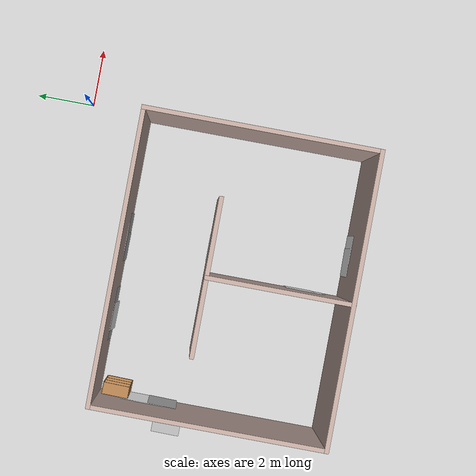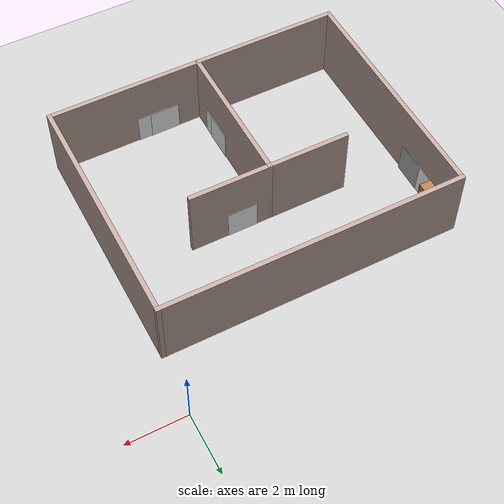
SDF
<sdf version="1.6">
 <world name="default">
  <model name="ground_plane">
   <static>1</static>
   <link name="link">
    <collision name="collision">
     <geometry><plane><normal>0 0 1</normal><size>100 100</size></plane></geometry>
     <surface><friction><ode><mu>100</mu><mu2>50</mu2></ode></friction></surface>
    </collision>
    <visual name="visual">
     <cast_shadows>0</cast_shadows>
     <geometry><plane><normal>0 0 1</normal><size>100 100</size></plane></geometry>
     <material>
      <script><uri>file://media/materials/scripts/gazebo.material</uri><name>Gazebo/Grey</name></script>
     </material>
    </visual>
   </link>
  </model>
  <model name="empty_room_colored_walls">
   <pose>-5.06103 -5.97507 0 0 -0 0</pose>
   <link name="Wall_62">
    <collision name="Wall_62_Collision">
     <geometry><box><size>10 0.15 2.5</size></box></geometry>
     <pose>0 0 1.25 0 -0 0</pose>
    </collision>
    <visual name="Wall_62_Visual">
     <pose>0 0 1.25 0 -0 0</pose>
     <geometry><box><size>10 0.15 2.5</size></box></geometry>
     <material>
      <script><uri>file://media/materials/scripts/gazebo.material</uri><name>Gazebo/Grey</name></script>
      <ambient>0.760784 0.662745 0.627451 1</ambient>
     </material>
    </visual>
    <pose>0 -3.92179 0 0 -0 0</pose>
   </link>
   <link name="Wall_63">
    <collision name="Wall_63_Collision">
     <geometry><box><size>8 0.15 2.5</size></box></geometry>
     <pose>0 0 1.25 0 -0 0</pose>
    </collision>
    <visual name="Wall_63_Visual">
     <pose>0 0 1.25 0 -0 0</pose>
     <geometry><box><size>8 0.15 2.5</size></box></geometry>
     <material>
      <script><uri>file://media/materials/scripts/gazebo.material</uri><name>Gazebo/Grey</name></script>
      <ambient>0.760784 0.662745 0.627451 1</ambient>
     </material>
    </visual>
    <pose>4.925 0.003206 0 0 -0 1.5708</pose>
   </link>
   <link name="Wall_64">
    <collision name="Wall_64_Collision">
     <geometry><box><size>10 0.15 2.5</size></box></geometry>
     <pose>0 0 1.25 0 -0 0</pose>
    </collision>
    <visual name="Wall_64_Visual">
     <pose>0 0 1.25 0 -0 0</pose>
     <geometry><box><size>10 0.15 2.5</size></box></geometry>
     <material>
      <script><uri>file://media/materials/scripts/gazebo.material</uri><name>Gazebo/Grey</name></script>
      <ambient>0.760784 0.662745 0.627451 1</ambient>
     </material>
    </visual>
    <pose>0 3.92821 0 0 -0 3.14159</pose>
   </link>
   <link name="Wall_65">
    <collision name="Wall_65_Collision">
     <geometry><box><size>8 0.15 2.5</size></box></geometry>
     <pose>0 0 1.25 0 -0 0</pose>
    </collision>
    <visual name="Wall_65_Visual">
     <pose>0 0 1.25 0 -0 0</pose>
     <geometry><box><size>8 0.15 2.5</size></box></geometry>
     <material>
      <script><uri>file://media/materials/scripts/gazebo.material</uri><name>Gazebo/Grey</name></script>
      <ambient>0.760784 0.662745 0.627451 1</ambient>
     </material>
    </visual>
    <pose>-4.925 0.003206 0 0 0 -1.5708</pose>
   </link>
   <link name="Wall_70">
    <collision name="Wall_70_Collision">
     <geometry><box><size>5 0.15 2.5</size></box></geometry>
     <pose>0 0 1.25 0 -0 0</pose>
    </collision>
    <visual name="Wall_70_Visual">
     <pose>0 0 1.25 0 -0 0</pose>
     <geometry><box><size>5 0.15 2.5</size></box></geometry>
     <material>
      <script><uri>file://media/materials/scripts/gazebo.material</uri><name>Gazebo/Grey</name></script>
      <ambient>0.760784 0.662745 0.627451 1</ambient>
     </material>
    </visual>
    <pose>-0.121943 -1.50321 0 0 -0 1.5708</pose>
   </link>
   <link name="Wall_71">
    <collision name="Wall_71_Collision">
     <geometry><box><size>2.75 0.15 2.5</size></box></geometry>
     <pose>0 0 1.25 0 -0 0</pose>
    </collision>
    <visual name="Wall_71_Visual">
     <pose>0 0 1.25 0 -0 0</pose>
     <geometry><box><size>2.75 0.15 2.5</size></box></geometry>
     <material>
      <script><uri>file://media/materials/scripts/gazebo.material</uri><name>Gazebo/Grey</name></script>
      <ambient>0.760784 0.662745 0.627451 1</ambient>
     </material>
    </visual>
    <pose>1.17806 0.921794 0 0 -0 0</pose>
   </link>
   <link name="Wall_73">
    <collision name="Wall_73_Collision">
     <geometry><box><size>2.75 0.15 2.5</size></box></geometry>
     <pose>0 0 1.25 0 -0 0</pose>
    </collision>
    <visual name="Wall_73_Visual">
     <pose>0 0 1.25 0 -0 0</pose>
     <geometry><box><size>2.75 0.15 2.5</size></box></geometry>
     <material>
      <script><uri>file://media/materials/scripts/gazebo.material</uri><name>Gazebo/Grey</name></script>
      <ambient>0.760784 0.662745 0.627451 1</ambient>
     </material>
    </visual>
    <pose>-1.42194 0.921794 0 0 -0 3.14159</pose>
   </link>
   <static>1</static>
  </model>
  <model name="bookshelf">
   <static>1</static>
   <link name="link">
    <inertial><mass>1</mass></inertial>
    <collision name="back">
     <pose>0 0.005 0.6 0 -0 0</pose>
     <geometry><box><size>0.9 0.01 1.2</size></box></geometry>
    </collision>
    <visual name="visual1">
     <pose>0 0.005 0.6 0 -0 0</pose>
     <geometry><box><size>0.9 0.01 1.2</size></box></geometry>
     <material>
      <script><uri>file://media/materials/scripts/gazebo.material</uri><name>Gazebo/Wood</name></script>
     </material>
    </visual>
    <collision name="left_side">
     <pose>0.45 -0.195 0.6 0 -0 0</pose>
     <geometry><box><size>0.02 0.4 1.2</size></box></geometry>
    </collision>
    <visual name="visual2">
     <pose>0.45 -0.195 0.6 0 -0 0</pose>
     <geometry><box><size>0.02 0.4 1.2</size></box></geometry>
     <material>
      <script><uri>file://media/materials/scripts/gazebo.material</uri><name>Gazebo/Wood</name></script>
     </material>
    </visual>
    <collision name="right_side">
     <pose>-0.45 -0.195 0.6 0 -0 0</pose>
     <geometry><box><size>0.02 0.4 1.2</size></box></geometry>
    </collision>
    <visual name="visual3">
     <pose>-0.45 -0.195 0.6 0 -0 0</pose>
     <geometry><box><size>0.02 0.4 1.2</size></box></geometry>
     <material>
      <script><uri>file://media/materials/scripts/gazebo.material</uri><name>Gazebo/Wood</name></script>
     </material>
    </visual>
    <collision name="bottom">
     <pose>0 -0.195 0.03 0 -0 0</pose>
     <geometry><box><size>0.88 0.4 0.06</size></box></geometry>
    </collision>
    <visual name="visual4">
     <pose>0 -0.195 0.03 0 -0 0</pose>
     <geometry><box><size>0.88 0.4 0.06</size></box></geometry>
     <material>
      <script><uri>file://media/materials/scripts/gazebo.material</uri><name>Gazebo/Wood</name></script>
     </material>
    </visual>
    <collision name="top">
     <pose>0 -0.195 1.19 0 -0 0</pose>
     <geometry><box><size>0.88 0.4 0.02</size></box></geometry>
    </collision>
    <visual name="visual5">
     <pose>0 -0.195 1.19 0 -0 0</pose>
     <geometry><box><size>0.88 0.4 0.02</size></box></geometry>
     <material>
      <script><uri>file://media/materials/scripts/gazebo.material</uri><name>Gazebo/Wood</name></script>
     </material>
    </visual>
    <collision name="low_shelf">
     <pose>0 -0.195 0.43 0 -0 0</pose>
     <geometry><box><size>0.88 0.4 0.02</size></box></geometry>
    </collision>
    <visual name="visual6">
     <pose>0 -0.195 0.43 0 -0 0</pose>
     <geometry><box><size>0.88 0.4 0.02</size></box></geometry>
     <material>
      <script><uri>file://media/materials/scripts/gazebo.material</uri><name>Gazebo/Wood</name></script>
     </material>
    </visual>
    <collision name="high_shelf">
     <pose>0 -0.195 0.8 0 -0 0</pose>
     <geometry><box><size>0.88 0.4 0.02</size></box></geometry>
    </collision>
    <visual name="visual7">
     <pose>0 -0.195 0.8 0 -0 0</pose>
     <geometry><box><size>0.88 0.4 0.02</size></box></geometry>
     <material>
      <script><uri>file://media/materials/scripts/gazebo.material</uri><name>Gazebo/Wood</name></script>
     </material>
    </visual>
   </link>
   <pose>-9.80012 -2.72902 0 0 -0 1.5503</pose>
  </model>
  <model name="Gas_3">
   <link name="link_0">
    <pose>4e-06 0 0 0 -0 0</pose>
    <inertial>
     <mass>1</mass>
     <inertia>
      <ixx>0.166667</ixx>
      <ixy>0</ixy>
      <ixz>0</ixz>
      <iyy>0.166667</iyy>
      <iyz>0</iyz>
      <izz>0.166667</izz>
     </inertia>
    </inertial>
    <visual name="visual">
     <geometry><box><size>0.01 1 1</size></box></geometry>
     <material>
      <lighting>1</lighting>
      <script>
       <uri>model://gas_3_N/materials/scripts</uri>
       <uri>model://gas_3_N/materials/textures</uri>
       <name>Gas/Gas3N</name>
      </script>
      <ambient>1 1 1 1</ambient>
      <diffuse>1 1 1 1</diffuse>
      <specular>0.01 0.01 0.01 1</specular>
      <emissive>1 1 1 1</emissive>
     </material>
     <cast_shadows>0</cast_shadows>
    </visual>
    <collision name="collision">
     <geometry><box><size>0.01 1 1</size></box></geometry>
     <surface>
      <friction>
       <ode><mu>1</mu><mu2>1</mu2><fdir1>0 0 0</fdir1><slip1>0</slip1><slip2>0</slip2></ode>
       <torsional>
        <coefficient>1</coefficient>
        <patch_radius>0</patch_radius>
        <surface_radius>0</surface_radius>
        <use_patch_radius>1</use_patch_radius>
        <ode><slip>0</slip></ode>
       </torsional>
      </friction>
      <bounce><restitution_coefficient>0</restitution_coefficient><threshold>1e+06</threshold></bounce>
      <contact>
       <collide_without_contact>0</collide_without_contact>
       <collide_without_contact_bitmask>1</collide_without_contact_bitmask>
       <collide_bitmask>1</collide_bitmask>
       <ode>
        <soft_cfm>0</soft_cfm>
        <soft_erp>0.2</soft_erp>
        <kp>1e+13</kp>
        <kd>1</kd>
        <max_vel>0.01</max_vel>
        <min_depth>0</min_depth>
       </ode>
       <bullet>
        <split_impulse>1</split_impulse>
        <split_impulse_penetration_threshold>-0.01</split_impulse_penetration_threshold>
        <soft_cfm>0</soft_cfm>
        <soft_erp>0.2</soft_erp>
        <kp>1e+13</kp>
        <kd>1</kd>
       </bullet>
      </contact>
     </surface>
    </collision>
   </link>
   <static>0</static>
   <pose>-3.42391 -9.81438 0.5 0 2e-06 -1.56585</pose>
  </model>
  <model name="Gas_2_0">
   <link name="link_0">
    <pose>4e-06 0 0 0 -0 0</pose>
    <inertial>
     <mass>1</mass>
     <inertia>
      <ixx>0.166667</ixx>
      <ixy>0</ixy>
      <ixz>0</ixz>
      <iyy>0.166667</iyy>
      <iyz>0</iyz>
      <izz>0.166667</izz>
     </inertia>
    </inertial>
    <visual name="visual">
     <geometry><box><size>0.01 1 1</size></box></geometry>
     <material>
      <lighting>1</lighting>
      <script>
       <uri>model://gas_2_N/materials/scripts</uri>
       <uri>model://gas_2_N/materials/textures</uri>
       <name>Gas/Gas2N</name>
      </script>
      <ambient>1 1 1 1</ambient>
      <diffuse>1 1 1 1</diffuse>
      <specular>0.01 0.01 0.01 1</specular>
      <emissive>1 1 1 1</emissive>
     </material>
     <cast_shadows>0</cast_shadows>
    </visual>
    <collision name="collision">
     <geometry><box><size>0.01 1 1</size></box></geometry>
     <surface>
      <friction>
       <ode><mu>1</mu><mu2>1</mu2><fdir1>0 0 0</fdir1><slip1>0</slip1><slip2>0</slip2></ode>
       <torsional>
        <coefficient>1</coefficient>
        <patch_radius>0</patch_radius>
        <surface_radius>0</surface_radius>
        <use_patch_radius>1</use_patch_radius>
        <ode><slip>0</slip></ode>
       </torsional>
      </friction>
      <bounce><restitution_coefficient>0</restitution_coefficient><threshold>1e+06</threshold></bounce>
      <contact>
       <collide_without_contact>0</collide_without_contact>
       <collide_without_contact_bitmask>1</collide_without_contact_bitmask>
       <collide_bitmask>1</collide_bitmask>
       <ode>
        <soft_cfm>0</soft_cfm>
        <soft_erp>0.2</soft_erp>
        <kp>1e+13</kp>
        <kd>1</kd>
        <max_vel>0.01</max_vel>
        <min_depth>0</min_depth>
       </ode>
       <bullet>
        <split_impulse>1</split_impulse>
        <split_impulse_penetration_threshold>-0.01</split_impulse_penetration_threshold>
        <soft_cfm>0</soft_cfm>
        <soft_erp>0.2</soft_erp>
        <kp>1e+13</kp>
        <kd>1</kd>
       </bullet>
      </contact>
     </surface>
    </collision>
   </link>
   <static>0</static>
   <pose>-4.38307 -2.13439 0.5 0 -2e-06 1.56691</pose>
  </model>
  <model name="Gas_3_2">
   <link name="link_0">
    <pose>4e-06 0 0 0 -0 0</pose>
    <inertial>
     <mass>1</mass>
     <inertia>
      <ixx>0.166667</ixx>
      <ixy>0</ixy>
      <ixz>0</ixz>
      <iyy>0.166667</iyy>
      <iyz>0</iyz>
      <izz>0.166667</izz>
     </inertia>
    </inertial>
    <visual name="visual">
     <geometry><box><size>0.01 1 1</size></box></geometry>
     <material>
      <lighting>1</lighting>
      <script>
       <uri>model://gas_3_N/materials/scripts</uri>
       <uri>model://gas_3_N/materials/textures</uri>
       <name>Gas/Gas3N</name>
      </script>
      <ambient>1 1 1 1</ambient>
      <diffuse>1 1 1 1</diffuse>
      <specular>0.01 0.01 0.01 1</specular>
      <emissive>1 1 1 1</emissive>
     </material>
     <cast_shadows>0</cast_shadows>
    </visual>
    <collision name="collision">
     <geometry><box><size>0.01 1 1</size></box></geometry>
     <surface>
      <friction>
       <ode><mu>1</mu><mu2>1</mu2><fdir1>0 0 0</fdir1><slip1>0</slip1><slip2>0</slip2></ode>
       <torsional>
        <coefficient>1</coefficient>
        <patch_radius>0</patch_radius>
        <surface_radius>0</surface_radius>
        <use_patch_radius>1</use_patch_radius>
        <ode><slip>0</slip></ode>
       </torsional>
      </friction>
      <bounce><restitution_coefficient>0</restitution_coefficient><threshold>1e+06</threshold></bounce>
      <contact>
       <collide_without_contact>0</collide_without_contact>
       <collide_without_contact_bitmask>1</collide_without_contact_bitmask>
       <collide_bitmask>1</collide_bitmask>
       <ode>
        <soft_cfm>0</soft_cfm>
        <soft_erp>0.2</soft_erp>
        <kp>1e+13</kp>
        <kd>1</kd>
        <max_vel>0.01</max_vel>
        <min_depth>0</min_depth>
       </ode>
       <bullet>
        <split_impulse>1</split_impulse>
        <split_impulse_penetration_threshold>-0.01</split_impulse_penetration_threshold>
        <soft_cfm>0</soft_cfm>
        <soft_erp>0.2</soft_erp>
        <kp>1e+13</kp>
        <kd>1</kd>
       </bullet>
      </contact>
     </surface>
    </collision>
   </link>
   <static>0</static>
   <pose>-4.23381 -4.97328 0.5 0 1e-06 1.5708</pose>
  </model>
  <model name="Gas_2_1">
   <link name="link_0">
    <pose>4e-06 0 0 0 -0 0</pose>
    <inertial>
     <mass>1</mass>
     <inertia>
      <ixx>0.166667</ixx>
      <ixy>0</ixy>
      <ixz>0</ixz>
      <iyy>0.166667</iyy>
      <iyz>0</iyz>
      <izz>0.166667</izz>
     </inertia>
    </inertial>
    <visual name="visual">
     <geometry><box><size>0.01 1 1</size></box></geometry>
     <material>
      <lighting>1</lighting>
      <script>
       <uri>model://gas_2_N/materials/scripts</uri>
       <uri>model://gas_2_N/materials/textures</uri>
       <name>Gas/Gas2N</name>
      </script>
      <ambient>1 1 1 1</ambient>
      <diffuse>1 1 1 1</diffuse>
      <specular>0.01 0.01 0.01 1</specular>
      <emissive>1 1 1 1</emissive>
     </material>
     <cast_shadows>0</cast_shadows>
    </visual>
    <collision name="collision">
     <geometry><box><size>0.01 1 1</size></box></geometry>
     <surface>
      <friction>
       <ode><mu>1</mu><mu2>1</mu2><fdir1>0 0 0</fdir1><slip1>0</slip1><slip2>0</slip2></ode>
       <torsional>
        <coefficient>1</coefficient>
        <patch_radius>0</patch_radius>
        <surface_radius>0</surface_radius>
        <use_patch_radius>1</use_patch_radius>
        <ode><slip>0</slip></ode>
       </torsional>
      </friction>
      <bounce><restitution_coefficient>0</restitution_coefficient><threshold>1e+06</threshold></bounce>
      <contact>
       <collide_without_contact>0</collide_without_contact>
       <collide_without_contact_bitmask>1</collide_without_contact_bitmask>
       <collide_bitmask>1</collide_bitmask>
       <ode>
        <soft_cfm>0</soft_cfm>
        <soft_erp>0.2</soft_erp>
        <kp>1e+13</kp>
        <kd>1</kd>
        <max_vel>0.01</max_vel>
        <min_depth>0</min_depth>
       </ode>
       <bullet>
        <split_impulse>1</split_impulse>
        <split_impulse_penetration_threshold>-0.01</split_impulse_penetration_threshold>
        <soft_cfm>0</soft_cfm>
        <soft_erp>0.2</soft_erp>
        <kp>1e+13</kp>
        <kd>1</kd>
       </bullet>
      </contact>
     </surface>
    </collision>
   </link>
   <static>0</static>
   <pose>-9.8861 -3.92126 0.499779 9e-06 -0.03988 -4e-06</pose>
  </model>
  <model name="Gas_4_2">
   <link name="link_0">
    <pose>4e-06 0 0 0 -0 0</pose>
    <inertial>
     <mass>1</mass>
     <inertia>
      <ixx>0.166667</ixx>
      <ixy>0</ixy>
      <ixz>0</ixz>
      <iyy>0.166667</iyy>
      <iyz>0</iyz>
      <izz>0.166667</izz>
     </inertia>
    </inertial>
    <visual name="visual">
     <geometry><box><size>0.01 1 1</size></box></geometry>
     <material>
      <lighting>1</lighting>
      <script>
       <uri>model://gas_4_N/materials/scripts</uri>
       <uri>model://gas_4_N/materials/textures</uri>
       <name>Gas/Gas4N</name>
      </script>
      <ambient>1 1 1 1</ambient>
      <diffuse>1 1 1 1</diffuse>
      <specular>0.01 0.01 0.01 1</specular>
      <emissive>1 1 1 1</emissive>
     </material>
     <cast_shadows>0</cast_shadows>
    </visual>
    <collision name="collision">
     <geometry><box><size>0.01 1 1</size></box></geometry>
     <surface>
      <friction>
       <ode><mu>1</mu><mu2>1</mu2><fdir1>0 0 0</fdir1><slip1>0</slip1><slip2>0</slip2></ode>
       <torsional>
        <coefficient>1</coefficient>
        <patch_radius>0</patch_radius>
        <surface_radius>0</surface_radius>
        <use_patch_radius>1</use_patch_radius>
        <ode><slip>0</slip></ode>
       </torsional>
      </friction>
      <bounce><restitution_coefficient>0</restitution_coefficient><threshold>1e+06</threshold></bounce>
      <contact>
       <collide_without_contact>0</collide_without_contact>
       <collide_without_contact_bitmask>1</collide_without_contact_bitmask>
       <collide_bitmask>1</collide_bitmask>
       <ode>
        <soft_cfm>0</soft_cfm>
        <soft_erp>0.2</soft_erp>
        <kp>1e+13</kp>
        <kd>1</kd>
        <max_vel>0.01</max_vel>
        <min_depth>0</min_depth>
       </ode>
       <bullet>
        <split_impulse>1</split_impulse>
        <split_impulse_penetration_threshold>-0.01</split_impulse_penetration_threshold>
        <soft_cfm>0</soft_cfm>
        <soft_erp>0.2</soft_erp>
        <kp>1e+13</kp>
        <kd>1</kd>
       </bullet>
      </contact>
     </surface>
    </collision>
   </link>
   <static>0</static>
   <pose>-7.19141 -2.1716 0.499645 3e-06 -0.049053 -1.57904</pose>
  </model>
  <model name="Gas_1_1">
   <link name="link_0">
    <pose>4e-06 0 0 0 -0 0</pose>
    <inertial>
     <mass>1</mass>
     <inertia>
      <ixx>0.166667</ixx>
      <ixy>0</ixy>
      <ixz>0</ixz>
      <iyy>0.166667</iyy>
      <iyz>0</iyz>
      <izz>0.166667</izz>
     </inertia>
    </inertial>
    <visual name="visual">
     <geometry><box><size>0.01 1 1</size></box></geometry>
     <material>
      <lighting>1</lighting>
      <script>
       <uri>model://gas_1_N/materials/scripts</uri>
       <uri>model://gas_1_N/materials/textures</uri>
       <name>Gas/Gas1N</name>
      </script>
      <ambient>1 1 1 1</ambient>
      <diffuse>1 1 1 1</diffuse>
      <specular>0.01 0.01 0.01 1</specular>
      <emissive>1 1 1 1</emissive>
     </material>
     <cast_shadows>0</cast_shadows>
    </visual>
    <collision name="collision">
     <geometry><box><size>0.01 1 1</size></box></geometry>
     <surface>
      <friction>
       <ode><mu>1</mu><mu2>1</mu2><fdir1>0 0 0</fdir1><slip1>0</slip1><slip2>0</slip2></ode>
       <torsional>
        <coefficient>1</coefficient>
        <patch_radius>0</patch_radius>
        <surface_radius>0</surface_radius>
        <use_patch_radius>1</use_patch_radius>
        <ode><slip>0</slip></ode>
       </torsional>
      </friction>
      <bounce><restitution_coefficient>0</restitution_coefficient><threshold>1e+06</threshold></bounce>
      <contact>
       <collide_without_contact>0</collide_without_contact>
       <collide_without_contact_bitmask>1</collide_without_contact_bitmask>
       <collide_bitmask>1</collide_bitmask>
       <ode>
        <soft_cfm>0</soft_cfm>
        <soft_erp>0.2</soft_erp>
        <kp>1e+13</kp>
        <kd>1</kd>
        <max_vel>0.01</max_vel>
        <min_depth>0</min_depth>
       </ode>
       <bullet>
        <split_impulse>1</split_impulse>
        <split_impulse_penetration_threshold>-0.01</split_impulse_penetration_threshold>
        <soft_cfm>0</soft_cfm>
        <soft_erp>0.2</soft_erp>
        <kp>1e+13</kp>
        <kd>1</kd>
       </bullet>
      </contact>
     </surface>
    </collision>
   </link>
   <static>0</static>
   <pose>-5.09178 -8.35994 0.5 0 2e-06 0.002339</pose>
  </model>
  <model name="Fire_1">
   <link name="link_0">
    <pose>4e-06 0 0 0 -0 0</pose>
    <inertial>
     <mass>1</mass>
     <inertia>
      <ixx>0.166667</ixx>
      <ixy>0</ixy>
      <ixz>0</ixz>
      <iyy>0.166667</iyy>
      <iyz>0</iyz>
      <izz>0.166667</izz>
     </inertia>
    </inertial>
    <visual name="visual">
     <geometry><box><size>0.01 1 1</size></box></geometry>
     <material>
      <lighting>1</lighting>
      <script>
       <uri>model://fire_1/materials/scripts</uri>
       <uri>model://fire_1/materials/textures</uri>
       <name>Fire/Fire1</name>
      </script>
      <ambient>1 1 1 1</ambient>
      <diffuse>1 1 1 1</diffuse>
      <specular>0.01 0.01 0.01 1</specular>
      <emissive>1 1 1 1</emissive>
     </material>
     <cast_shadows>0</cast_shadows>
    </visual>
    <collision name="collision">
     <geometry><box><size>0.01 1 1</size></box></geometry>
     <surface>
      <friction>
       <ode><mu>1</mu><mu2>1</mu2><fdir1>0 0 0</fdir1><slip1>0</slip1><slip2>0</slip2></ode>
       <torsional>
        <coefficient>1</coefficient>
        <patch_radius>0</patch_radius>
        <surface_radius>0</surface_radius>
        <use_patch_radius>1</use_patch_radius>
        <ode><slip>0</slip></ode>
       </torsional>
      </friction>
      <bounce><restitution_coefficient>0</restitution_coefficient><threshold>1e+06</threshold></bounce>
      <contact>
       <collide_without_contact>0</collide_without_contact>
       <collide_without_contact_bitmask>1</collide_without_contact_bitmask>
       <collide_bitmask>1</collide_bitmask>
       <ode>
        <soft_cfm>0</soft_cfm>
        <soft_erp>0.2</soft_erp>
        <kp>1e+13</kp>
        <kd>1</kd>
        <max_vel>0.01</max_vel>
        <min_depth>0</min_depth>
       </ode>
       <bullet>
        <split_impulse>1</split_impulse>
        <split_impulse_penetration_threshold>-0.01</split_impulse_penetration_threshold>
        <soft_cfm>0</soft_cfm>
        <soft_erp>0.2</soft_erp>
        <kp>1e+13</kp>
        <kd>1</kd>
       </bullet>
      </contact>
     </surface>
    </collision>
   </link>
   <static>0</static>
   <pose>-5.10297 -8.71783 0.5 -0 2e-06 4e-06</pose>
  </model>
  <model name="Fire_1_0">
   <link name="link_0">
    <pose>4e-06 0 0 0 -0 0</pose>
    <inertial>
     <mass>1</mass>
     <inertia>
      <ixx>0.166667</ixx>
      <ixy>0</ixy>
      <ixz>0</ixz>
      <iyy>0.166667</iyy>
      <iyz>0</iyz>
      <izz>0.166667</izz>
     </inertia>
    </inertial>
    <visual name="visual">
     <geometry><box><size>0.01 1 1</size></box></geometry>
     <material>
      <lighting>1</lighting>
      <script>
       <uri>model://fire_1/materials/scripts</uri>
       <uri>model://fire_1/materials/textures</uri>
       <name>Fire/Fire1</name>
      </script>
      <ambient>1 1 1 1</ambient>
      <diffuse>1 1 1 1</diffuse>
      <specular>0.01 0.01 0.01 1</specular>
      <emissive>1 1 1 1</emissive>
     </material>
     <cast_shadows>0</cast_shadows>
    </visual>
    <collision name="collision">
     <geometry><box><size>0.01 1 1</size></box></geometry>
     <surface>
      <friction>
       <ode><mu>1</mu><mu2>1</mu2><fdir1>0 0 0</fdir1><slip1>0</slip1><slip2>0</slip2></ode>
       <torsional>
        <coefficient>1</coefficient>
        <patch_radius>0</patch_radius>
        <surface_radius>0</surface_radius>
        <use_patch_radius>1</use_patch_radius>
        <ode><slip>0</slip></ode>
       </torsional>
      </friction>
      <bounce><restitution_coefficient>0</restitution_coefficient><threshold>1e+06</threshold></bounce>
      <contact>
       <collide_without_contact>0</collide_without_contact>
       <collide_without_contact_bitmask>1</collide_without_contact_bitmask>
       <collide_bitmask>1</collide_bitmask>
       <ode>
        <soft_cfm>0</soft_cfm>
        <soft_erp>0.2</soft_erp>
        <kp>1e+13</kp>
        <kd>1</kd>
        <max_vel>0.01</max_vel>
        <min_depth>0</min_depth>
       </ode>
       <bullet>
        <split_impulse>1</split_impulse>
        <split_impulse_penetration_threshold>-0.01</split_impulse_penetration_threshold>
        <soft_cfm>0</soft_cfm>
        <soft_erp>0.2</soft_erp>
        <kp>1e+13</kp>
        <kd>1</kd>
       </bullet>
      </contact>
     </surface>
    </collision>
   </link>
   <static>0</static>
   <pose>-3.86967 -9.80613 0.5 3.14159 6e-06 1.58398</pose>
  </model>
  <model name="Fire_1_3">
   <link name="link_0">
    <pose>4e-06 0 0 0 -0 0</pose>
    <inertial>
     <mass>1</mass>
     <inertia>
      <ixx>0.166667</ixx>
      <ixy>0</ixy>
      <ixz>0</ixz>
      <iyy>0.166667</iyy>
      <iyz>0</iyz>
      <izz>0.166667</izz>
     </inertia>
    </inertial>
    <visual name="visual">
     <geometry><box><size>0.01 1 1</size></box></geometry>
     <material>
      <lighting>1</lighting>
      <script>
       <uri>model://fire_1/materials/scripts</uri>
       <uri>model://fire_1/materials/textures</uri>
       <name>Fire/Fire1</name>
      </script>
      <ambient>1 1 1 1</ambient>
      <diffuse>1 1 1 1</diffuse>
      <specular>0.01 0.01 0.01 1</specular>
      <emissive>1 1 1 1</emissive>
     </material>
     <cast_shadows>0</cast_shadows>
    </visual>
    <collision name="collision">
     <geometry><box><size>0.01 1 1</size></box></geometry>
     <surface>
      <friction>
       <ode><mu>1</mu><mu2>1</mu2><fdir1>0 0 0</fdir1><slip1>0</slip1><slip2>0</slip2></ode>
       <torsional>
        <coefficient>1</coefficient>
        <patch_radius>0</patch_radius>
        <surface_radius>0</surface_radius>
        <use_patch_radius>1</use_patch_radius>
        <ode><slip>0</slip></ode>
       </torsional>
      </friction>
      <bounce><restitution_coefficient>0</restitution_coefficient><threshold>1e+06</threshold></bounce>
      <contact>
       <collide_without_contact>0</collide_without_contact>
       <collide_without_contact_bitmask>1</collide_without_contact_bitmask>
       <collide_bitmask>1</collide_bitmask>
       <ode>
        <soft_cfm>0</soft_cfm>
        <soft_erp>0.2</soft_erp>
        <kp>1e+13</kp>
        <kd>1</kd>
        <max_vel>0.01</max_vel>
        <min_depth>0</min_depth>
       </ode>
       <bullet>
        <split_impulse>1</split_impulse>
        <split_impulse_penetration_threshold>-0.01</split_impulse_penetration_threshold>
        <soft_cfm>0</soft_cfm>
        <soft_erp>0.2</soft_erp>
        <kp>1e+13</kp>
        <kd>1</kd>
       </bullet>
      </contact>
     </surface>
    </collision>
   </link>
   <static>0</static>
   <pose>-9.86899 -3.42773 0.499582 -3.14158 0.047879 3.13539</pose>
  </model>
  <model name="fire_2_3">
   <link name="link_0">
    <pose>4e-06 0 0 0 -0 0</pose>
    <inertial>
     <mass>1</mass>
     <inertia>
      <ixx>0.166667</ixx>
      <ixy>0</ixy>
      <ixz>0</ixz>
      <iyy>0.166667</iyy>
      <iyz>0</iyz>
      <izz>0.166667</izz>
     </inertia>
    </inertial>
    <visual name="visual">
     <geometry><box><size>0.01 1 1</size></box></geometry>
     <material>
      <lighting>1</lighting>
      <script>
       <uri>model://fire_2/materials/scripts</uri>
       <uri>model://fire_2/materials/textures</uri>
       <name>Fire/Fire2</name>
      </script>
      <ambient>0.3 0.3 0.3 1</ambient>
      <diffuse>0.7 0.7 0.7 1</diffuse>
      <specular>0.01 0.01 0.01 1</specular>
      <emissive>1 1 1 1</emissive>
     </material>
     <cast_shadows>0</cast_shadows>
    </visual>
    <collision name="collision">
     <geometry><box><size>0.01 1 1</size></box></geometry>
     <surface>
      <friction>
       <ode><mu>1</mu><mu2>1</mu2><fdir1>0 0 0</fdir1><slip1>0</slip1><slip2>0</slip2></ode>
       <torsional>
        <coefficient>1</coefficient>
        <patch_radius>0</patch_radius>
        <surface_radius>0</surface_radius>
        <use_patch_radius>1</use_patch_radius>
        <ode><slip>0</slip></ode>
       </torsional>
      </friction>
      <bounce><restitution_coefficient>0</restitution_coefficient><threshold>1e+06</threshold></bounce>
      <contact>
       <collide_without_contact>0</collide_without_contact>
       <collide_without_contact_bitmask>1</collide_without_contact_bitmask>
       <collide_bitmask>1</collide_bitmask>
       <ode>
        <soft_cfm>0</soft_cfm>
        <soft_erp>0.2</soft_erp>
        <kp>1e+13</kp>
        <kd>1</kd>
        <max_vel>0.01</max_vel>
        <min_depth>0</min_depth>
       </ode>
       <bullet>
        <split_impulse>1</split_impulse>
        <split_impulse_penetration_threshold>-0.01</split_impulse_penetration_threshold>
        <soft_cfm>0</soft_cfm>
        <soft_erp>0.2</soft_erp>
        <kp>1e+13</kp>
        <kd>1</kd>
       </bullet>
      </contact>
     </surface>
    </collision>
   </link>
   <static>0</static>
   <pose>-4.0365 -2.14573 0.5 0 -6e-06 -1.57468</pose>
  </model>
  <model name="fire_4_2">
   <link name="link_0">
    <pose>4e-06 0 0 0 -0 0</pose>
    <inertial>
     <mass>1</mass>
     <inertia>
      <ixx>0.166667</ixx>
      <ixy>0</ixy>
      <ixz>0</ixz>
      <iyy>0.166667</iyy>
      <iyz>0</iyz>
      <izz>0.166667</izz>
     </inertia>
    </inertial>
    <visual name="visual">
     <geometry><box><size>0.01 1 1</size></box></geometry>
     <material>
      <lighting>1</lighting>
      <script>
       <uri>model://fire_4/materials/scripts</uri>
       <uri>model://fire_4/materials/textures</uri>
       <name>Fire/Fire4</name>
      </script>
      <ambient>0.3 0.3 0.3 1</ambient>
      <diffuse>0.7 0.7 0.7 1</diffuse>
      <specular>0.01 0.01 0.01 1</specular>
      <emissive>1 1 1 1</emissive>
     </material>
     <cast_shadows>0</cast_shadows>
    </visual>
    <collision name="collision">
     <geometry><box><size>0.01 1 1</size></box></geometry>
     <surface>
      <friction>
       <ode><mu>1</mu><mu2>1</mu2><fdir1>0 0 0</fdir1><slip1>0</slip1><slip2>0</slip2></ode>
       <torsional>
        <coefficient>1</coefficient>
        <patch_radius>0</patch_radius>
        <surface_radius>0</surface_radius>
        <use_patch_radius>1</use_patch_radius>
        <ode><slip>0</slip></ode>
       </torsional>
      </friction>
      <bounce><restitution_coefficient>0</restitution_coefficient><threshold>1e+06</threshold></bounce>
      <contact>
       <collide_without_contact>0</collide_without_contact>
       <collide_without_contact_bitmask>1</collide_without_contact_bitmask>
       <collide_bitmask>1</collide_bitmask>
       <ode>
        <soft_cfm>0</soft_cfm>
        <soft_erp>0.2</soft_erp>
        <kp>1e+13</kp>
        <kd>1</kd>
        <max_vel>0.01</max_vel>
        <min_depth>0</min_depth>
       </ode>
       <bullet>
        <split_impulse>1</split_impulse>
        <split_impulse_penetration_threshold>-0.01</split_impulse_penetration_threshold>
        <soft_cfm>0</soft_cfm>
        <soft_erp>0.2</soft_erp>
        <kp>1e+13</kp>
        <kd>1</kd>
       </bullet>
      </contact>
     </surface>
    </collision>
   </link>
   <static>0</static>
   <pose>-4.71442 -2.1518 0.5 0 -6e-06 -1.58205</pose>
  </model>
  <model name="fire_4_3">
   <link name="link_0">
    <pose>4e-06 0 0 0 -0 0</pose>
    <inertial>
     <mass>1</mass>
     <inertia>
      <ixx>0.166667</ixx>
      <ixy>0</ixy>
      <ixz>0</ixz>
      <iyy>0.166667</iyy>
      <iyz>0</iyz>
      <izz>0.166667</izz>
     </inertia>
    </inertial>
    <visual name="visual">
     <geometry><box><size>0.01 1 1</size></box></geometry>
     <material>
      <lighting>1</lighting>
      <script>
       <uri>model://fire_4/materials/scripts</uri>
       <uri>model://fire_4/materials/textures</uri>
       <name>Fire/Fire4</name>
      </script>
      <ambient>0.3 0.3 0.3 1</ambient>
      <diffuse>0.7 0.7 0.7 1</diffuse>
      <specular>0.01 0.01 0.01 1</specular>
      <emissive>1 1 1 1</emissive>
     </material>
     <cast_shadows>0</cast_shadows>
    </visual>
    <collision name="collision">
     <geometry><box><size>0.01 1 1</size></box></geometry>
     <surface>
      <friction>
       <ode><mu>1</mu><mu2>1</mu2><fdir1>0 0 0</fdir1><slip1>0</slip1><slip2>0</slip2></ode>
       <torsional>
        <coefficient>1</coefficient>
        <patch_radius>0</patch_radius>
        <surface_radius>0</surface_radius>
        <use_patch_radius>1</use_patch_radius>
        <ode><slip>0</slip></ode>
       </torsional>
      </friction>
      <bounce><restitution_coefficient>0</restitution_coefficient><threshold>1e+06</threshold></bounce>
      <contact>
       <collide_without_contact>0</collide_without_contact>
       <collide_without_contact_bitmask>1</collide_without_contact_bitmask>
       <collide_bitmask>1</collide_bitmask>
       <ode>
        <soft_cfm>0</soft_cfm>
        <soft_erp>0.2</soft_erp>
        <kp>1e+13</kp>
        <kd>1</kd>
        <max_vel>0.01</max_vel>
        <min_depth>0</min_depth>
       </ode>
       <bullet>
        <split_impulse>1</split_impulse>
        <split_impulse_penetration_threshold>-0.01</split_impulse_penetration_threshold>
        <soft_cfm>0</soft_cfm>
        <soft_erp>0.2</soft_erp>
        <kp>1e+13</kp>
        <kd>1</kd>
       </bullet>
      </contact>
     </surface>
    </collision>
   </link>
   <static>0</static>
   <pose>-10.5933 -4.65567 0.004996 -0.028463 -1.57079 0.017193</pose>
  </model>
  <model name="fire_4_4">
   <link name="link_0">
    <pose>4e-06 0 0 0 -0 0</pose>
    <inertial>
     <mass>1</mass>
     <inertia>
      <ixx>0.166667</ixx>
      <ixy>0</ixy>
      <ixz>0</ixz>
      <iyy>0.166667</iyy>
      <iyz>0</iyz>
      <izz>0.166667</izz>
     </inertia>
    </inertial>
    <visual name="visual">
     <geometry><box><size>0.01 1 1</size></box></geometry>
     <material>
      <lighting>1</lighting>
      <script>
       <uri>model://fire_4/materials/scripts</uri>
       <uri>model://fire_4/materials/textures</uri>
       <name>Fire/Fire4</name>
      </script>
      <ambient>0.3 0.3 0.3 1</ambient>
      <diffuse>0.7 0.7 0.7 1</diffuse>
      <specular>0.01 0.01 0.01 1</specular>
      <emissive>1 1 1 1</emissive>
     </material>
     <cast_shadows>0</cast_shadows>
    </visual>
    <collision name="collision">
     <geometry><box><size>0.01 1 1</size></box></geometry>
     <surface>
      <friction>
       <ode><mu>1</mu><mu2>1</mu2><fdir1>0 0 0</fdir1><slip1>0</slip1><slip2>0</slip2></ode>
       <torsional>
        <coefficient>1</coefficient>
        <patch_radius>0</patch_radius>
        <surface_radius>0</surface_radius>
        <use_patch_radius>1</use_patch_radius>
        <ode><slip>0</slip></ode>
       </torsional>
      </friction>
      <bounce><restitution_coefficient>0</restitution_coefficient><threshold>1e+06</threshold></bounce>
      <contact>
       <collide_without_contact>0</collide_without_contact>
       <collide_without_contact_bitmask>1</collide_without_contact_bitmask>
       <collide_bitmask>1</collide_bitmask>
       <ode>
        <soft_cfm>0</soft_cfm>
        <soft_erp>0.2</soft_erp>
        <kp>1e+13</kp>
        <kd>1</kd>
        <max_vel>0.01</max_vel>
        <min_depth>0</min_depth>
       </ode>
       <bullet>
        <split_impulse>1</split_impulse>
        <split_impulse_penetration_threshold>-0.01</split_impulse_penetration_threshold>
        <soft_cfm>0</soft_cfm>
        <soft_erp>0.2</soft_erp>
        <kp>1e+13</kp>
        <kd>1</kd>
       </bullet>
      </contact>
     </surface>
    </collision>
   </link>
   <static>0</static>
   <pose>-9.87011 -4.37308 0.49966 0 -0.048198 -0.018364</pose>
  </model>
  <model name="fire_4_5">
   <link name="link_0">
    <pose>4e-06 0 0 0 -0 0</pose>
    <inertial>
     <mass>1</mass>
     <inertia>
      <ixx>0.166667</ixx>
      <ixy>0</ixy>
      <ixz>0</ixz>
      <iyy>0.166667</iyy>
      <iyz>0</iyz>
      <izz>0.166667</izz>
     </inertia>
    </inertial>
    <visual name="visual">
     <geometry><box><size>0.01 1 1</size></box></geometry>
     <material>
      <lighting>1</lighting>
      <script>
       <uri>model://fire_4/materials/scripts</uri>
       <uri>model://fire_4/materials/textures</uri>
       <name>Fire/Fire4</name>
      </script>
      <ambient>0.3 0.3 0.3 1</ambient>
      <diffuse>0.7 0.7 0.7 1</diffuse>
      <specular>0.01 0.01 0.01 1</specular>
      <emissive>1 1 1 1</emissive>
     </material>
     <cast_shadows>0</cast_shadows>
    </visual>
    <collision name="collision">
     <geometry><box><size>0.01 1 1</size></box></geometry>
     <surface>
      <friction>
       <ode><mu>1</mu><mu2>1</mu2><fdir1>0 0 0</fdir1><slip1>0</slip1><slip2>0</slip2></ode>
       <torsional>
        <coefficient>1</coefficient>
        <patch_radius>0</patch_radius>
        <surface_radius>0</surface_radius>
        <use_patch_radius>1</use_patch_radius>
        <ode><slip>0</slip></ode>
       </torsional>
      </friction>
      <bounce><restitution_coefficient>0</restitution_coefficient><threshold>1e+06</threshold></bounce>
      <contact>
       <collide_without_contact>0</collide_without_contact>
       <collide_without_contact_bitmask>1</collide_without_contact_bitmask>
       <collide_bitmask>1</collide_bitmask>
       <ode>
        <soft_cfm>0</soft_cfm>
        <soft_erp>0.2</soft_erp>
        <kp>1e+13</kp>
        <kd>1</kd>
        <max_vel>0.01</max_vel>
        <min_depth>0</min_depth>
       </ode>
       <bullet>
        <split_impulse>1</split_impulse>
        <split_impulse_penetration_threshold>-0.01</split_impulse_penetration_threshold>
        <soft_cfm>0</soft_cfm>
        <soft_erp>0.2</soft_erp>
        <kp>1e+13</kp>
        <kd>1</kd>
       </bullet>
      </contact>
     </surface>
    </collision>
   </link>
   <static>0</static>
   <pose>-6.66413 -2.12828 0.5 0 -3e-06 -1.57366</pose>
  </model>
  <model name="fire_2_4">
   <link name="link_0">
    <pose>4e-06 0 0 0 -0 0</pose>
    <inertial>
     <mass>1</mass>
     <inertia>
      <ixx>0.166667</ixx>
      <ixy>0</ixy>
      <ixz>0</ixz>
      <iyy>0.166667</iyy>
      <iyz>0</iyz>
      <izz>0.166667</izz>
     </inertia>
    </inertial>
    <visual name="visual">
     <geometry><box><size>0.01 1 1</size></box></geometry>
     <material>
      <lighting>1</lighting>
      <script>
       <uri>model://fire_2/materials/scripts</uri>
       <uri>model://fire_2/materials/textures</uri>
       <name>Fire/Fire2</name>
      </script>
      <ambient>0.3 0.3 0.3 1</ambient>
      <diffuse>0.7 0.7 0.7 1</diffuse>
      <specular>0.01 0.01 0.01 1</specular>
      <emissive>1 1 1 1</emissive>
     </material>
     <cast_shadows>0</cast_shadows>
    </visual>
    <collision name="collision">
     <geometry><box><size>0.01 1 1</size></box></geometry>
     <surface>
      <friction>
       <ode><mu>1</mu><mu2>1</mu2><fdir1>0 0 0</fdir1><slip1>0</slip1><slip2>0</slip2></ode>
       <torsional>
        <coefficient>1</coefficient>
        <patch_radius>0</patch_radius>
        <surface_radius>0</surface_radius>
        <use_patch_radius>1</use_patch_radius>
        <ode><slip>0</slip></ode>
       </torsional>
      </friction>
      <bounce><restitution_coefficient>0</restitution_coefficient><threshold>1e+06</threshold></bounce>
      <contact>
       <collide_without_contact>0</collide_without_contact>
       <collide_without_contact_bitmask>1</collide_without_contact_bitmask>
       <collide_bitmask>1</collide_bitmask>
       <ode>
        <soft_cfm>0</soft_cfm>
        <soft_erp>0.2</soft_erp>
        <kp>1e+13</kp>
        <kd>1</kd>
        <max_vel>0.01</max_vel>
        <min_depth>0</min_depth>
       </ode>
       <bullet>
        <split_impulse>1</split_impulse>
        <split_impulse_penetration_threshold>-0.01</split_impulse_penetration_threshold>
        <soft_cfm>0</soft_cfm>
        <soft_erp>0.2</soft_erp>
        <kp>1e+13</kp>
        <kd>1</kd>
       </bullet>
      </contact>
     </surface>
    </collision>
   </link>
   <static>0</static>
   <pose>-7.52507 -2.13271 0.49999 0 -1.5e-05 -1.58228</pose>
  </model>
 </world>
</sdf>
